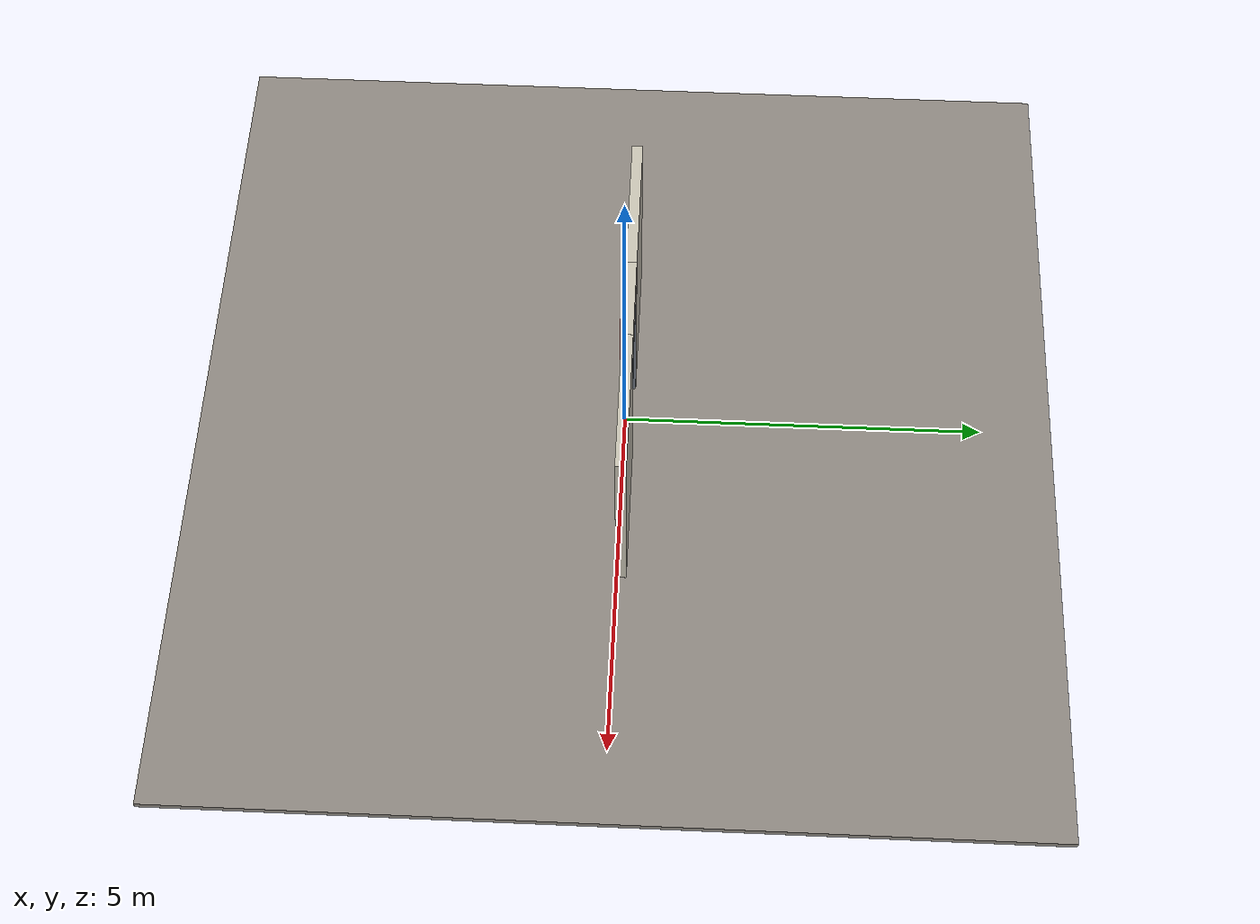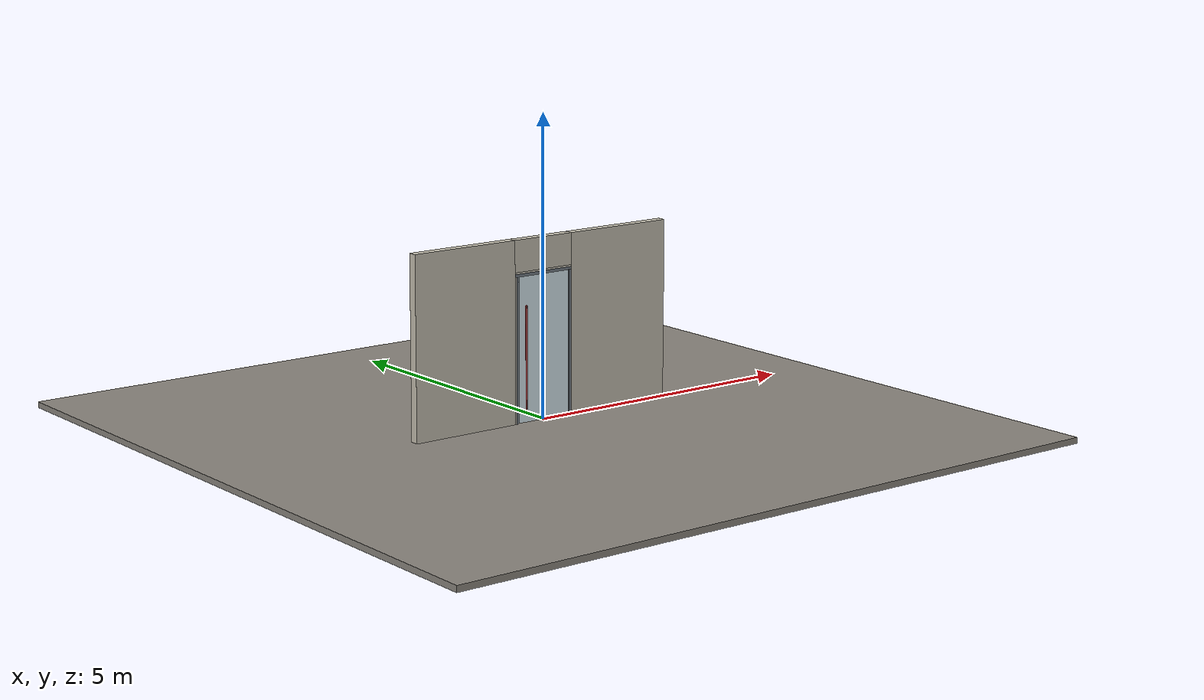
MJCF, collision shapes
<?xml version="1.0" ?>
<mujoco model="db0741_pivot_minimal">
  <compiler angle="radian" meshdir="../../hardware" texturedir="../../textures" autolimits="true" inertiafromgeom="false"/>
  <option timestep="0.002" integrator="implicitfast" cone="elliptic" impratio="10" noslip_iterations="3">
    <flag multiccd="enable"/>
  </option>
  <size memory="16M"/>
  <default>
    <geom condim="4" solref="0.005 1" solimp="0.95 0.99 0.001"/>
    <joint solreflimit="0.005 1" solimplimit="0.95 0.99 0.001"/>
    <tendon solreflimit="0.005 1"/>
    <equality solref="0.002 1"/>
  </default>
  <visual>
    <headlight ambient="0.4 0.4 0.4" diffuse="0.7 0.7 0.7" specular="0.2 0.2 0.2"/>
    <quality shadowsize="4096"/>
    <map znear="0.01" zfar="60"/>
  </visual>
  <asset>
    <mesh name="pull_897e207f65" file="pull_897e207f65.obj"/>
    <material name="mat_floor" rgba="0.55 0.53 0.5 1" specular="0.2" shininess="0.15" reflectance="0"/>
    <material name="mat_wall" rgba="0.78 0.76 0.7 1" specular="0.2" shininess="0.1" reflectance="0"/>
    <material name="mat_leaf" rgba="0.85 0.92 0.95 0.25" specular="0.2" shininess="0.95" reflectance="0.1"/>
    <material name="mat_glass_leaf" rgba="0.85 0.92 0.95 0.25" specular="0.2" shininess="0.95" reflectance="0.1"/>
    <material name="mat_patch" rgba="0.75 0.76 0.77 1" specular="0.8" shininess="0.65" reflectance="0.4"/>
    <material name="mat_hinge" rgba="0.65 0.66 0.68 1" specular="0.74" shininess="0.5" reflectance="0.36"/>
    <material name="mat_op_stainless" rgba="0.75 0.76 0.77 1" specular="0.8" shininess="0.65" reflectance="0.4"/>
    <material name="mat_frame" rgba="0.45 0.48 0.52 1" specular="0.32" shininess="0.6" reflectance="0.08"/>
    <material name="mat_closer" rgba="0.75 0.76 0.77 1" specular="0.8" shininess="0.65" reflectance="0.4"/>
    <texture name="skybox" type="skybox" builtin="gradient" rgb1="0.6 0.7 0.85" rgb2="0.9 0.92 0.95" width="256" height="256"/>
  </asset>
  <worldbody>
    <light name="sun" pos="1.5 -2.5 4" dir="-0.3 0.5 -0.8" directional="true" diffuse="0.8 0.8 0.8" specular="0.3 0.3 0.3" castshadow="true"/>
    <light name="fill" pos="-1.5 2.5 3" dir="0.3 -0.5 -0.7" directional="true" diffuse="0.35 0.35 0.4" castshadow="false"/>
    <camera name="robot_view" pos="0 -2.82675 2.01415" xyaxes="1 0 0 0 0.26963 0.962964" fovy="52"/>
    <camera name="far_view" pos="0 2.94575 2.01415" xyaxes="-1 0 0 0 -0.26963 0.962964" fovy="52"/>
    <camera name="iso" pos="-2.19355 -2.36495 2.47595" xyaxes="0.741536 -0.670913 0 0.242917 0.268487 0.932151" fovy="46"/>
    <camera name="detail_handle" pos="-0.215 -0.871 1.33" xyaxes="0.97561 0.219512 0 -0.070934 0.315262 0.94635" fovy="38"/>
    <geom name="floor" type="box" size="6 6 0.05" pos="0 0 -0.05" material="mat_floor" group="0" contype="1" conaffinity="1" friction="0.8 0.005 0.0001" density="2400"/>
    <geom name="wall_left" type="box" size="0.9595 0.0725 1.506" pos="-1.5405 0.0595 1.506" material="mat_wall" group="0" contype="1" conaffinity="1" friction="0.6 0.005 0.0001" density="800"/>
    <geom name="wall_right" type="box" size="0.9745 0.0725 1.506" pos="1.5255 0.0595 1.506" material="mat_wall" group="0" contype="1" conaffinity="1" friction="0.6 0.005 0.0001" density="800"/>
    <geom name="wall_header" type="box" size="0.566 0.0725 0.2625" pos="-0.015 0.0595 2.7495" material="mat_wall" group="0" contype="1" conaffinity="1" friction="0.6 0.005 0.0001" density="800"/>
    <geom name="jamb_hinge" type="box" size="0.0225 0.0725 1.206" pos="0.5285 0.0595 1.206" material="mat_frame" group="0" contype="1" conaffinity="1" friction="0.6 0.005 0.0001" density="300"/>
    <geom name="jamb_strike" type="box" size="0.0225 0.0725 1.206" pos="-0.5285 0.0595 1.206" material="mat_frame" group="0" contype="1" conaffinity="1" friction="0.6 0.005 0.0001" density="300"/>
    <geom name="stud_strike" type="box" size="0.015 0.0725 1.206" pos="-0.566 0.0595 1.206" material="mat_wall" group="0" contype="1" conaffinity="1" friction="0.6 0.005 0.0001" density="500"/>
    <geom name="jamb_head" type="box" size="0.566 0.0725 0.0225" pos="-0.015 0.0595 2.4345" material="mat_frame" group="0" contype="1" conaffinity="1" friction="0.6 0.005 0.0001" density="300"/>
    <geom name="head_stud" type="box" size="0.566 0.0725 0.015" pos="-0.015 0.0595 2.472" material="mat_wall" group="0" contype="1" conaffinity="1" friction="0.6 0.005 0.0001" density="500"/>
    <site name="approach_point" pos="0 -1.5 0" quat="1 0 0 0" size="0.05" rgba="0.2 0.9 0.2 0.5" group="4"/>
    <site name="goal_point" pos="0 1.5 0" quat="1 0 0 0" size="0.05" rgba="0.2 0.9 0.2 0.5" group="4"/>
    <site name="door_plane_center" pos="0 0 1.206" quat="1 0 0 0" size="0.02" rgba="0.2 0.9 0.2 0.5" group="4"/>
    <body name="leaf" pos="0.506 0 0">
      <inertial pos="-0.839229 0 1.074709" mass="80" quat="-0.492339 -0.492339 -0.507546 0.507546" diaginertia="3.001326929 24.671738086 27.019123392"/>
      <joint name="leaf_hinge" type="hinge" axis="0 0 1" pos="-0.2 0 0" limited="true" range="0 1.745329" damping="8.43344" frictionloss="1.333704" stiffness="13.025241" springref="-2.475194" armature="0.02"/>
      <geom name="leaf_glass" type="box" size="0.5 0.006 1.2" pos="-0.506 0 1.208" material="mat_glass_leaf" group="0" contype="1" conaffinity="1" friction="0.4 0.005 0.0001" density="1"/>
      <geom name="leaf_pull_n" type="mesh" mesh="pull_897e207f65" pos="-0.901 -0.006 1.05" quat="0 0 -0.707107 0.707107" material="mat_op_stainless" group="1" contype="0" conaffinity="0" density="3000"/>
      <geom name="leaf_pull_col_n" type="capsule" size="0.016 0.88" pos="-0.901 -0.071 1.05" material="mat_op_stainless" group="3" contype="1" conaffinity="1" rgba="0.8 0.3 0.3 0.25" friction="0.7 0.01 0.0001" density="3000"/>
      <geom name="leaf_pull_p" type="mesh" mesh="pull_897e207f65" pos="-0.901 0.006 1.05" quat="0 0 0.707107 0.707107" material="mat_op_stainless" group="1" contype="0" conaffinity="0" density="3000"/>
      <geom name="leaf_pull_col_p" type="capsule" size="0.016 0.88" pos="-0.901 0.071 1.05" material="mat_op_stainless" group="3" contype="1" conaffinity="1" rgba="0.8 0.3 0.3 0.25" friction="0.7 0.01 0.0001" density="3000"/>
      <site name="leaf_pull_grip_n" pos="-0.901 -0.071 1.05" quat="1 0 0 0" size="0.012" rgba="0.2 0.9 0.2 0.5" group="4"/>
      <site name="leaf_pull_grip_p" pos="-0.901 0.071 1.05" quat="1 0 0 0" size="0.012" rgba="0.2 0.9 0.2 0.5" group="4"/>
      <site name="leaf_edge_mid" pos="-1.006 0 1.2" quat="1 0 0 0" size="0.02" rgba="0.2 0.9 0.2 0.5" group="4"/>
    </body>
  </worldbody>
  <sensor>
    <jointpos name="leaf_hinge_pos" joint="leaf_hinge"/>
    <jointvel name="leaf_hinge_vel" joint="leaf_hinge"/>
  </sensor>
</mujoco>
